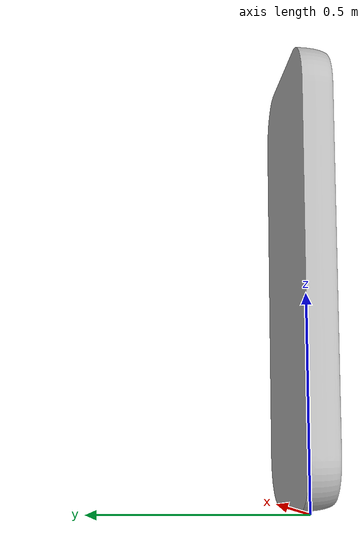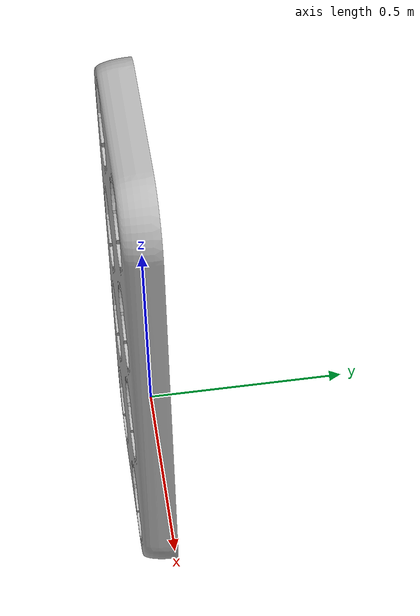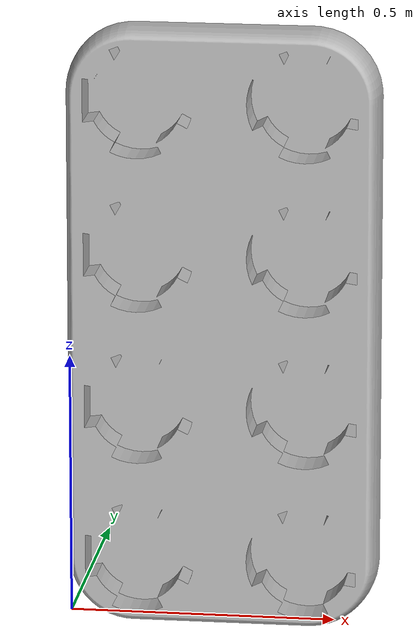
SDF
<sdf version='1.6'>
  <model name='Tray'>
    <link name='Tray'>
      <pose frame=''>0 0 0 0 -0 0</pose>
      <inertial>
        <pose frame=''>0.15596 0.040781 0.43815 0 -0 0</pose>
        <mass>32.189</mass>
        <inertia>
          <ixx>3.25126</ixx>
          <ixy>-5.86692e-06</ixy>
          <ixz>1.7607e-05</ixz>
          <iyy>4.115</iyy>
          <iyz>-2.55611e-14</iyz>
          <izz>0.897647</izz>
        </inertia>
      </inertial>
      <collision name='Tray_collision'>
        <pose frame=''>0 0 0 1.5708 -0 0</pose>
        <geometry>
          <mesh>
            <scale>.001 .001 .001</scale>
            <uri>model://Tray/meshes/Tray.STL</uri>
          </mesh>
        </geometry>
      </collision>
      <visual name='Tray_visual'>
        <pose frame=''>0 0 0 1.5708 -0 0</pose>
        <geometry>
          <mesh>
            <scale>.001 .001 .001</scale>
            <uri>model://Tray/meshes/Tray.STL</uri>
          </mesh>
        </geometry>
      </visual>
    </link>
  </model>
</sdf>
